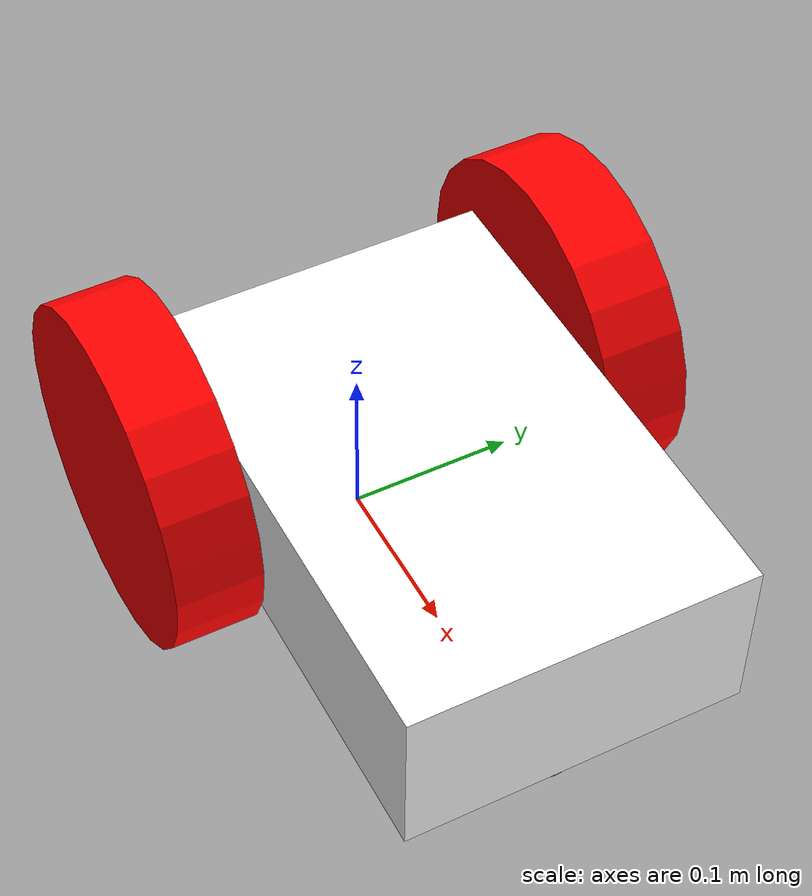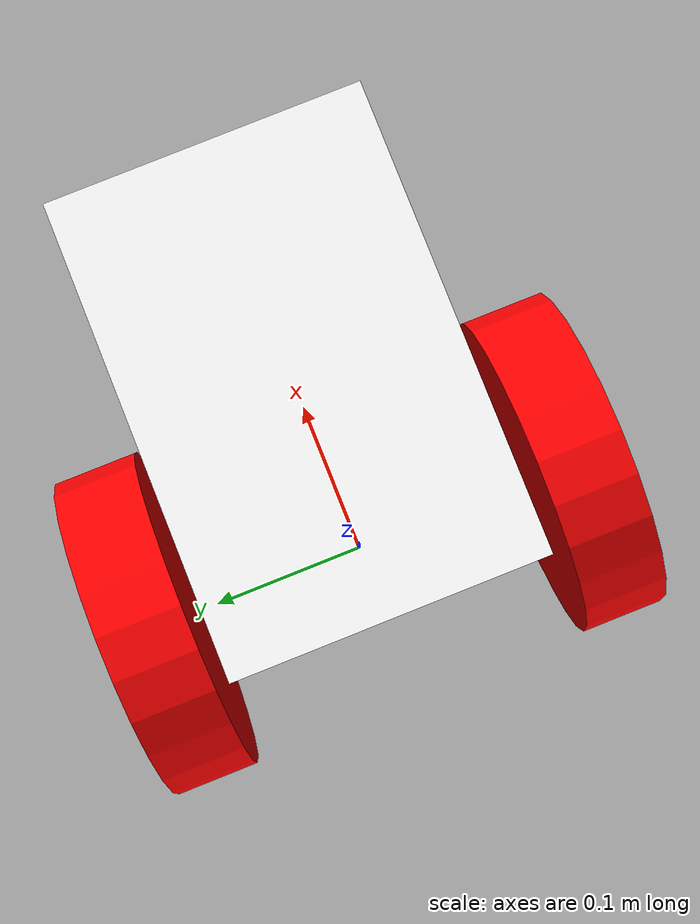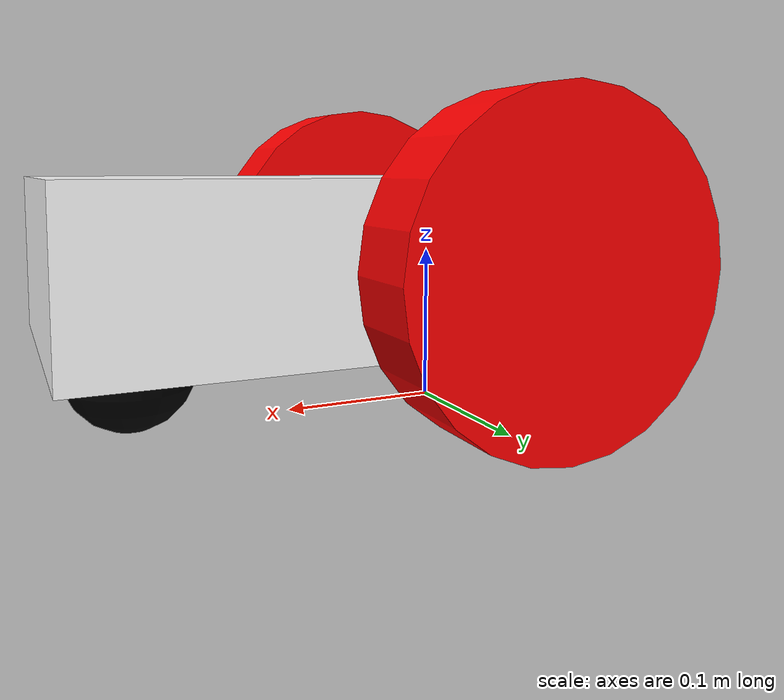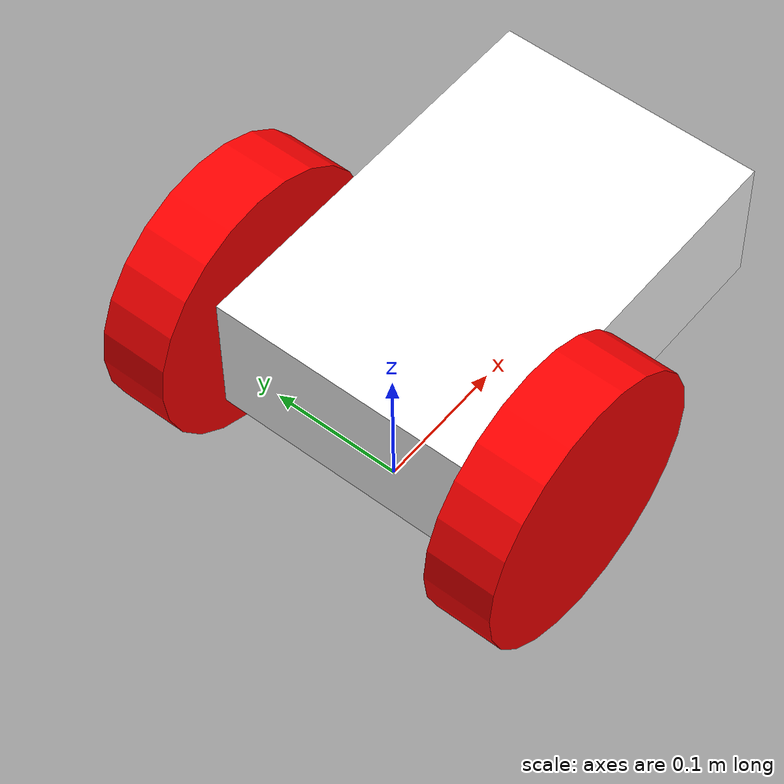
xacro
<?xml version="1.0"?>
<robot name="robo_gazebo" xmlns:xacro="http://ros.org/wiki/xacro">
  <xacro:include filename="$(find gazebo_sim)/urdf/color.xacro"/>
  <xacro:include filename="$(find gazebo_sim)/urdf/wheel_macro.xacro"/>
  <xacro:include filename="$(find gazebo_sim)/urdf/caster_macro.xacro"/>

  <xacro:wheel_macro prefix="left_wheel"  parent="body_link" xyz="-0.1 0.13 0"/>
  <xacro:wheel_macro prefix="right_wheel" parent="body_link" xyz="-0.1 -0.13 0"/>
  <xacro:ball_macro prefix="front_caster" parent="body_link" xyz="0.1 0 -0.06"/>

  <xacro:property name="x" value="0.3"/>
  <xacro:property name="y" value="0.18"/>
  <xacro:property name="z" value="0.1"/>
  <xacro:property name="mass" value="1.0"/>

  <link name="base_link"/>

  <joint name="base_joint" type="fixed">
    <parent link="base_link"/>
    <child link="body_link"/>
    <origin xyz="0.1 0 0.1" rpy="0 0 0"/>
  </joint>

  <link name="body_link">

    <inertial>
     <origin xyz="0 0 0" rpy="0 0 0"/>
     <mass value="${mass}"/>
     <inertia ixx="${mass*((y**2)+(z**2))/12}" ixy="0.0" ixz="0.0"
              iyy="${mass*((z**2)+(x**2))/12}" iyz="0.0"
              izz="${mass*((x**2)+(y**2))/12}"/>
    </inertial>

    <visual>
      <origin xyz="0 0 0" rpy="0 0 0" />
      <geometry>
        <box size="${x} ${y+0.02} ${z}" />
      </geometry>
      <material name="white" />
    </visual>

    <collision>
     <origin xyz="0 0 0" rpy="0 0 0"/>
     <geometry>
      <box size="${x} ${y} ${z}"/>
     </geometry>
    </collision>

  </link>

  <gazebo reference="body_link">
   <material>Gazebo/White</material>
   <gravity>true</gravity>
  </gazebo>

  <gazebo>
    <plugin name="gazebo_ros_control" filename="libgazebo_ros_control.so">
      <robotNamespace>/robot_gazebo</robotNamespace>
      <legacyModeNS>true</legacyModeNS>
    </plugin>

    <plugin name="ground_truth" filename="libgazebo_ros_p3d.so">
      <frameName>world</frameName>
      <bodyName>body_link</bodyName>
      <topicName>/possition</topicName>
      <updateRate>50</updateRate>
    </plugin>
  </gazebo>

</robot>

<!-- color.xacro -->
<robot xmlns:xacro="http://ros.org/wiki/xacro">

  <material name="gray">
    <color rgba="0.5 0.5 0.5 3"/>
  </material>

  <material name="red">
    <color rgba="1.0 0.0 0.0 2"/>
  </material>

  <material name="green">
   <color rgba="0 1.0 0 2"/>
  </material>

  <material name="white">
   <color rgba="1.0 1.0 1.0 2.0"/>
  </material>

  <material name="black">
   <color rgba="0.0 0.0 0.0 2.0"/>
  </material>

</robot>

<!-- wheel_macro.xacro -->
<robot xmlns:xacro="http://ros.org/wiki/xacro">

  <xacro:property name="radius" value="0.1"/>
  <xacro:property name="length" value="0.05"/>
  <xacro:property name="mass" value="0.1"/>

  <xacro:macro name="wheel_macro" params="parent prefix xyz">

    <joint name="${prefix}_joint" type="continuous">
      <origin xyz="${xyz}" rpy="${radians(-90)} 0 0"/>
      <parent link="${parent}"/>
      <child  link="${prefix}_link"/>
      <axis xyz="0 0 1" />
    </joint>

    <transmission name="${prefix}_trans" type="SimpleTransmission">
      <type>transmission_interface/SimpleTransmission</type>
      <joint name="${prefix}_joint">
        <hardwareInterface>hardware_interface/VelocityJointInterface</hardwareInterface>
      </joint>
      <actuator name="${prefix}_motor">
        <mechanicalReduction>1</mechanicalReduction>
      </actuator>
    </transmission>

    <link name="${prefix}_link">
      <inertial>
       <origin xyz="0 0 0" rpy="0 0 0"/>
       <mass value="${mass}"/>
       <inertia ixx="${mass*(3*(radius**2)+(length**2))/12}" ixy="0.0" ixz="0.0"
                iyy="${mass*(3*(radius**2)+(length**2))/12}" iyz="0.0"
                izz="${(mass*(radius**2))/2}"/>
      </inertial>
      <visual>
        <geometry>
          <cylinder radius="${radius}" length="${length}" />
        </geometry>
        <material name="red"/>
      </visual>
      <collision>
       <geometry>
        <cylinder radius="${radius}" length="${length}"/>
       </geometry>
      </collision>
    </link>

    <gazebo reference="${prefix}_link">
     <material>Gazebo/Red</material>
     <mu1 value="1.0"/>
     <mu2 value="1.0"/>
     <kp value="10000000.0" />
     <kd value="1.0" />
    </gazebo>

  </xacro:macro>

</robot>

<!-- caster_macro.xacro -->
<robot xmlns:xacro="http://ros.org/wiki/xacro">

  <xacro:macro name="ball_macro" params="parent prefix xyz">

   <joint name="${prefix}_joint" type="fixed">
     <parent link="${parent}"/>
     <child  link="${prefix}_link"/>
     <origin xyz="${xyz}" rpy="0 0 0"/>
   </joint>

   <link name="${prefix}_link">
    <inertial>
      <origin xyz="0 0 0" rpy="0 0 0"/>
      <mass value="0.2"/>
      <inertia ixx="0.000128" ixy="0.0" ixz="0.0" iyy="0.000128" iyz="0.0" izz="0.000128"/>
    </inertial>
    <visual>
      <origin xyz="0 0 0" rpy="0 0 0" />
      <geometry>
        <sphere radius="0.04" />
      </geometry>
      <material name="black" />
    </visual>
    <collision>
     <origin xyz="0 0 0" rpy="0 0 0"/>
     <geometry>
      <sphere radius="0.04"/>
     </geometry>
     <material name="gray"/>
    </collision>
   </link>

   <gazebo reference="${prefix}_link">
     <material>Gazebo/Green</material>
     <mu1 value="0.0"/>
     <mu2 value="0.0"/>
   </gazebo>

  </xacro:macro>

</robot>
